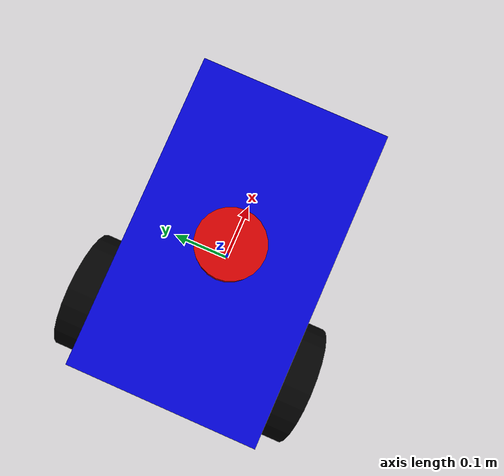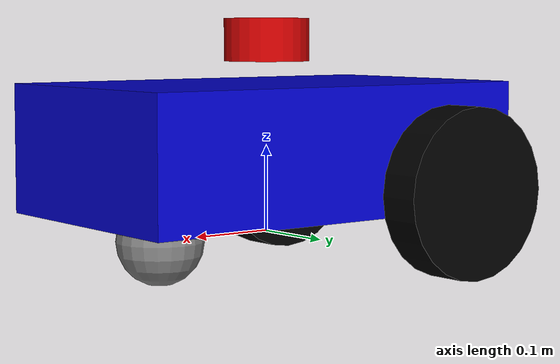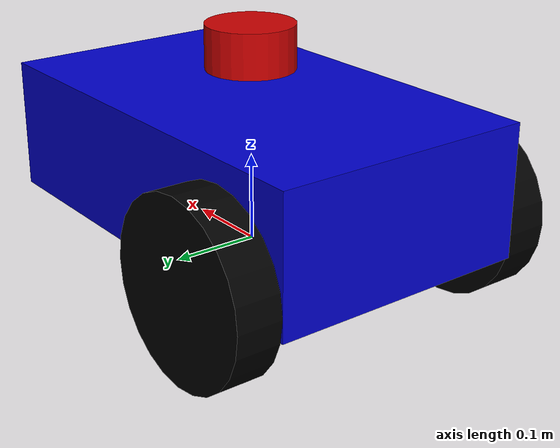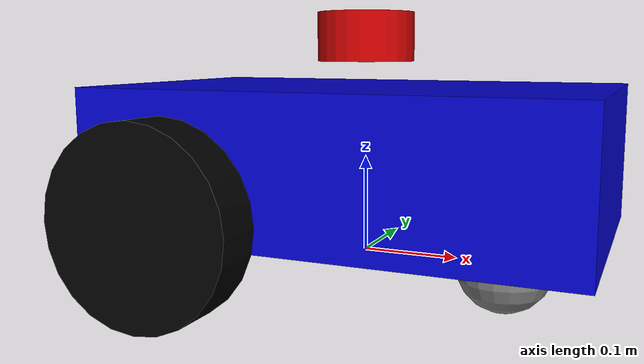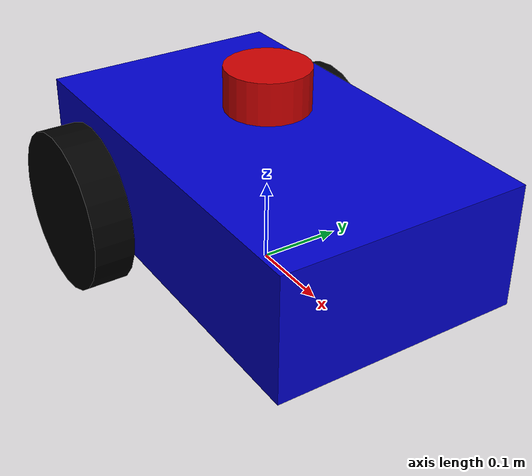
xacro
<?xml version="1.0"?>
<robot name="warehouse_robot" xmlns:xacro="http://www.ros.org/wiki/xacro">

  <!--                    PROPERTIES                                -->
  <xacro:property name="base_mass"        value="10.0"/>
  <xacro:property name="base_length"      value="0.5"/>
  <xacro:property name="base_width"       value="0.3"/>
  <xacro:property name="base_height"      value="0.15"/>

  <xacro:property name="wheel_mass"       value="1.0"/>
  <xacro:property name="wheel_radius"     value="0.1"/>
  <xacro:property name="wheel_length"     value="0.05"/>
  <xacro:property name="wheel_separation" value="0.35"/>

  <xacro:property name="caster_mass"      value="0.5"/>
  <xacro:property name="caster_radius"    value="0.05"/>

  <xacro:property name="lidar_mass"       value="0.1"/>
  <xacro:property name="lidar_radius"     value="0.05"/>
  <xacro:property name="lidar_length"     value="0.05"/>

  <!--                    MATERIALS                                 -->
  <material name="blue">
    <color rgba="0.0 0.0 0.8 1.0"/>
  </material>
  <material name="black">
    <color rgba="0.0 0.0 0.0 1.0"/>
  </material>
  <material name="red">
    <color rgba="0.8 0.0 0.0 1.0"/>
  </material>
  <material name="grey">
    <color rgba="0.5 0.5 0.5 1.0"/>
  </material>

  <!--                 INERTIA MACROS                              -->
  <xacro:macro name="box_inertia" params="m l w h">
    <inertial>
      <mass value="${m}"/>
      <origin xyz="0 0 0" rpy="0 0 0"/>
      <inertia
        ixx="${m*(w*w+h*h)/12}" ixy="0" ixz="0"
        iyy="${m*(l*l+h*h)/12}" iyz="0"
        izz="${m*(l*l+w*w)/12}"/>
    </inertial>
  </xacro:macro>

  <xacro:macro name="cylinder_inertia" params="m r h">
    <inertial>
      <mass value="${m}"/>
      <origin xyz="0 0 0" rpy="0 0 0"/>
      <inertia
        ixx="${m*(3*r*r+h*h)/12}" ixy="0" ixz="0"
        iyy="${m*(3*r*r+h*h)/12}" iyz="0"
        izz="${m*r*r/2}"/>
    </inertial>
  </xacro:macro>

  <xacro:macro name="sphere_inertia" params="m r">
    <inertial>
      <mass value="${m}"/>
      <origin xyz="0 0 0" rpy="0 0 0"/>
      <inertia
        ixx="${2*m*r*r/5}" ixy="0" ixz="0"
        iyy="${2*m*r*r/5}" iyz="0"
        izz="${2*m*r*r/5}"/>
    </inertial>
  </xacro:macro>

  <!--                 WHEEL MACRO                                  -->
  <xacro:macro name="wheel" params="name x y">
    <link name="${name}_wheel">
      <visual>
        <geometry>
          <cylinder radius="${wheel_radius}" length="${wheel_length}"/>
        </geometry>
        <material name="black"/>
      </visual>
      <collision>
        <geometry>
          <cylinder radius="${wheel_radius}" length="${wheel_length}"/>
        </geometry>
      </collision>
      <xacro:cylinder_inertia m="${wheel_mass}" r="${wheel_radius}" h="${wheel_length}"/>
    </link>

    <joint name="${name}_wheel_joint" type="continuous">
      <parent link="base_link"/>
      <child link="${name}_wheel"/>
      <origin xyz="${x} ${y} -0.05" rpy="1.5708 0 0"/>
      <axis xyz="0 0 1"/>
    </joint>

    <gazebo reference="${name}_wheel">
      <mu1>1.0</mu1>
      <mu2>1.0</mu2>
      <kp>500000.0</kp>
      <kd>10.0</kd>
      <material>Gazebo/Black</material>
    </gazebo>
  </xacro:macro>

  <!--                 BASE FOOTPRINT                               -->
  <link name="base_footprint"/>

  <joint name="base_footprint_joint" type="fixed">
    <parent link="base_footprint"/>
    <child link="base_link"/>
    <origin xyz="0 0 0.1" rpy="0 0 0"/>
  </joint>

  <!--                 BASE LINK (Chassis)                          -->
  <link name="base_link">
    <visual>
      <geometry>
        <box size="${base_length} ${base_width} ${base_height}"/>
      </geometry>
      <material name="blue"/>
    </visual>
    <collision>
      <geometry>
        <box size="${base_length} ${base_width} ${base_height}"/>
      </geometry>
    </collision>
    <xacro:box_inertia m="${base_mass}"
                       l="${base_length}"
                       w="${base_width}"
                       h="${base_height}"/>
  </link>

  <gazebo reference="base_link">
    <material>Gazebo/Blue</material>
  </gazebo>

  <!--                 WHEELS                                       -->
  <xacro:wheel name="left"  x="-0.15" y=" 0.175"/>
  <xacro:wheel name="right" x="-0.15" y="-0.175"/>

  <!--                 CASTER WHEEL                                 -->
  <link name="caster_wheel">
    <visual>
      <geometry>
        <sphere radius="${caster_radius}"/>
      </geometry>
      <material name="grey"/>
    </visual>
    <collision>
      <geometry>
        <sphere radius="${caster_radius}"/>
      </geometry>
    </collision>
    <xacro:sphere_inertia m="${caster_mass}" r="${caster_radius}"/>
  </link>

  <joint name="caster_wheel_joint" type="fixed">
    <parent link="base_link"/>
    <child link="caster_wheel"/>
    <origin xyz="0.15 0.0 -0.1" rpy="0 0 0"/>
  </joint>

  <gazebo reference="caster_wheel">
    <mu1>0.0</mu1>
    <mu2>0.0</mu2>
    <material>Gazebo/Grey</material>
  </gazebo>

  <!--                 LIDAR LINK                                   -->
  <link name="lidar_link">
    <visual>
      <geometry>
        <cylinder radius="${lidar_radius}" length="${lidar_length}"/>
      </geometry>
      <material name="red"/>
    </visual>
    <collision>
      <geometry>
        <cylinder radius="${lidar_radius}" length="${lidar_length}"/>
      </geometry>
    </collision>
    <xacro:cylinder_inertia m="${lidar_mass}"
                            r="${lidar_radius}"
                            h="${lidar_length}"/>
  </link>

  <joint name="lidar_joint" type="fixed">
    <parent link="base_link"/>
    <child link="lidar_link"/>
    <origin xyz="0.0 0.0 0.125" rpy="0 0 0"/>
  </joint>

  <gazebo reference="lidar_link">
    <material>Gazebo/Red</material>
  </gazebo>

  <!--              DIFFERENTIAL DRIVE PLUGIN                       -->
  <gazebo>
    <plugin name="differential_drive_controller"
            filename="libgazebo_ros_diff_drive.so">
      <ros>
        <remapping>cmd_vel:=cmd_vel</remapping>
        <remapping>odom:=odom</remapping>
      </ros>
      <left_joint>right_wheel_joint</left_joint>
      <right_joint>left_wheel_joint</right_joint>
      <wheel_separation>${wheel_separation}</wheel_separation>
      <wheel_diameter>${2*wheel_radius}</wheel_diameter>
      <max_wheel_torque>20</max_wheel_torque>
      <max_wheel_acceleration>1.0</max_wheel_acceleration>
      <publish_odom>true</publish_odom>
      <publish_odom_tf>true</publish_odom_tf>
      <publish_wheel_tf>true</publish_wheel_tf>
      <odometry_frame>odom</odometry_frame>
      <robot_base_frame>base_link</robot_base_frame>
    </plugin>
  </gazebo>

  <!--                 LIDAR SENSOR PLUGIN                          -->
  <gazebo reference="lidar_link">
    <sensor type="ray" name="lidar_sensor">
      <pose>0 0 0 0 0 0</pose>
      <visualize>true</visualize>
      <update_rate>10</update_rate>
      <ray>
        <scan>
          <horizontal>
            <samples>360</samples>
            <resolution>1</resolution>
            <min_angle>-3.14159</min_angle>
            <max_angle>3.14159</max_angle>
          </horizontal>
        </scan>
        <range>
          <min>0.12</min>
          <max>10.0</max>
          <resolution>0.01</resolution>
        </range>
        <noise>
          <type>gaussian</type>
          <mean>0.0</mean>
          <stddev>0.01</stddev>
        </noise>
      </ray>
      <plugin name="gazebo_ros_ray_sensor"
              filename="libgazebo_ros_ray_sensor.so">
        <ros>
          <remapping>~/out:=scan</remapping>
        </ros>
        <output_type>sensor_msgs/LaserScan</output_type>
        <frame_name>lidar_link</frame_name>
      </plugin>
    </sensor>
  </gazebo>

</robot>
